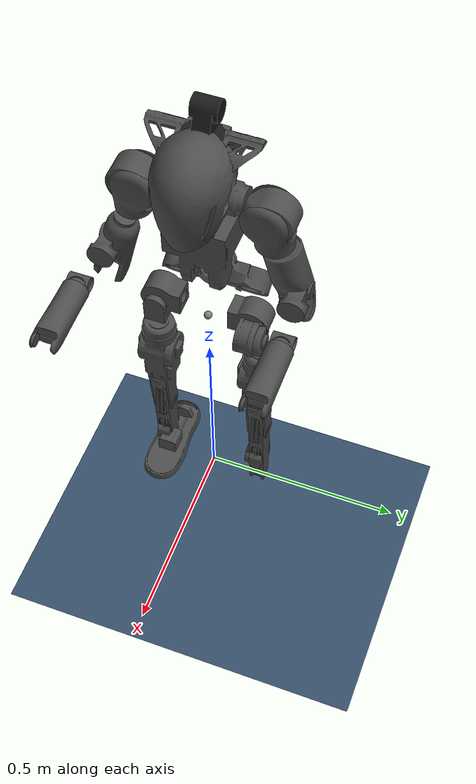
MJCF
<mujoco model="E1_2_v1">
  <compiler angle="radian" meshdir="./meshes/"/>
  <default>
    <joint damping="0.1" armature="0.01" frictionloss="0.01"/>
  </default>
  <asset>
    <mesh name="pelvis" file="pelvis.STL"/>
    <mesh name="left_hip_pitch_link" file="left_hip_pitch_link.STL"/>
    <mesh name="left_hip_roll_link" file="left_hip_roll_link.STL"/>
    <mesh name="left_hip_yaw_link" file="left_hip_yaw_link.STL"/>
    <mesh name="left_knee_link" file="left_knee_link.STL"/>
    <mesh name="left_ankle_pitch_link" file="left_ankle_pitch_link.STL"/>
    <mesh name="left_ankle_roll_link" file="left_ankle_roll_link.STL"/>
    <mesh name="right_hip_pitch_link" file="right_hip_pitch_link.STL"/>
    <mesh name="right_hip_roll_link" file="right_hip_roll_link.STL"/>
    <mesh name="right_hip_yaw_link" file="right_hip_yaw_link.STL"/>
    <mesh name="right_knee_link" file="right_knee_link.STL"/>
    <mesh name="right_ankle_pitch_link" file="right_ankle_pitch_link.STL"/>
    <mesh name="right_ankle_roll_link" file="right_ankle_roll_link.STL"/>
    <mesh name="torso_link" file="torso_link.STL"/>
    <mesh name="left_shoulder_pitch_link" file="left_shoulder_pitch_link.STL"/>
    <mesh name="left_shoulder_roll_link" file="left_shoulder_roll_link.STL"/>
    <mesh name="left_shoulder_yaw_link" file="left_shoulder_yaw_link.STL"/>
    <mesh name="left_elbow_link" file="left_elbow_link.STL"/>
    <mesh name="left_wrist_roll_link" file="left_wrist_roll_link.STL"/>
    <mesh name="left_wrist_pitch_link" file="left_wrist_pitch_link.STL"/>
    <mesh name="right_shoulder_pitch_link" file="right_shoulder_pitch_link.STL"/>
    <mesh name="right_shoulder_roll_link" file="right_shoulder_roll_link.STL"/>
    <mesh name="right_shoulder_yaw_link" file="right_shoulder_yaw_link.STL"/>
    <mesh name="right_elbow_link" file="right_elbow_link.STL"/>
    <mesh name="right_wrist_roll_link" file="right_wrist_roll_link.STL"/>
    <mesh name="right_wrist_pitch_link" file="right_wrist_pitch_link.STL"/>
    <mesh name="head_pitch_link" file="head_pitch_link.STL"/>
    <mesh name="head_yaw_link" file="head_yaw_link.STL"/>
  </asset>

  <worldbody>
    <body name="pelvis" pos="0 0 0.675">
      <inertial pos="-2.026e-05 0 0.0250193" quat="1 -1.77058e-05 -6.2652e-05 0.000906207" mass="3.6" diaginertia="0.0112704 0.00928407 0.00672158"/>
      <joint name="floating_base_joint" type="free" limited="false" actuatorfrclimited="false"/>
      <geom type="mesh" contype="0" conaffinity="0" group="1" density="0" rgba="0.29412 0.29412 0.29412 1" mesh="pelvis"/>
      <geom type="mesh" rgba="0.29412 0.29412 0.29412 1" mesh="pelvis"/>
      <site name="imu_in_pelvis" size="0.01" pos="0 0 -0.045"/>
      <body name="left_hip_pitch_link" pos="0 0.0575 0">
        <inertial pos="0.00088737 0.0559209 -0.0170011" quat="0.525183 0.830564 -0.161076 0.0916522" mass="1.01" diaginertia="0.00103812 0.00100921 0.000721394"/>
        <joint name="left_hip_pitch_joint" pos="0 0 0" axis="0 1 0" range="-2.5307 2.8798" actuatorfrcrange="-120 120"/>
        <geom type="mesh" contype="0" conaffinity="0" group="1" density="0" rgba="0.29412 0.29412 0.29412 1" mesh="left_hip_pitch_link"/>
        <body name="left_hip_roll_link" pos="0 0.0625 -0.02">
          <inertial pos="-0.00054795 0.00928439 -0.070913" quat="0.72708 0.0123078 0.0971982 0.679526" mass="0.981" diaginertia="0.00140293 0.0012261 0.000954215"/>
          <joint name="left_hip_roll_joint" pos="0 0 0" axis="1 0 0" range="-0.5236 3.1416" actuatorfrcrange="-60 60"/>
          <geom type="mesh" contype="0" conaffinity="0" group="1" density="0" rgba="0.29412 0.29412 0.29412 1" mesh="left_hip_roll_link"/>
          <body name="left_hip_yaw_link" pos="0 0.01 -0.098">
            <inertial pos="-8.81e-06 -0.00845833 -0.163113" quat="0.707299 -0.00656895 0.00682479 0.706851" mass="1.56" diaginertia="0.00493085 0.00429472 0.00135114"/>
            <joint name="left_hip_yaw_joint" pos="0 0 0" axis="0 0 1" range="-2.0944 2.0944" actuatorfrcrange="-36 36"/>
            <geom type="mesh" contype="0" conaffinity="0" group="1" density="0" rgba="0.29412 0.29412 0.29412 1" mesh="left_hip_yaw_link"/>
            <body name="left_knee_link" pos="0 0 -0.182">
              <inertial pos="-0.00054127 0.020434 -0.100513" quat="0.710429 -0.000848428 0.00238427 0.703764" mass="0.389" diaginertia="0.00417321 0.00390613 0.000296172"/>
              <joint name="left_knee_joint" pos="0 0 0" axis="0 1 0" range="0 2.2689" actuatorfrcrange="-120 120"/>
              <geom type="mesh" contype="0" conaffinity="0" group="1" density="0" rgba="0.29412 0.29412 0.29412 1" mesh="left_knee_link"/>
              <body name="left_ankle_pitch_link" pos="0 0 -0.23">
                <inertial pos="0.00011592 -0.00958151 -0.0284272" quat="0.705154 0.0494053 -0.049277 0.705612" mass="1.333" diaginertia="0.00253878 0.00227413 0.000815969"/>
                <joint name="left_ankle_pitch_joint" pos="0 0 0" axis="0 1 0" range="-0.5236 0.5236" actuatorfrcrange="-30 30"/>
                <geom type="mesh" contype="0" conaffinity="0" group="1" density="0" rgba="0.29412 0.29412 0.29412 1" mesh="left_ankle_pitch_link"/>
                <body name="left_ankle_roll_link" pos="-0.03 -0.016 -0.07">
                  <inertial pos="0.0427373 0 -0.0377132" quat="0.515461 0.484045 0.484045 0.515461" mass="0.4" diaginertia="0.00077773 0.000770618 0.000172802"/>
                  <joint name="left_ankle_roll_joint" pos="0 0 0" axis="1 0 0" range="-1.5708 1.5708" actuatorfrcrange="-30 30"/>
                  <geom type="mesh" contype="0" conaffinity="0" group="1" density="0" rgba="0.29412 0.29412 0.29412 1" mesh="left_ankle_roll_link"/>
                  <geom name="l_foot_collision" type="box" size="0.105 0.0457 0.015" pos="0.05 0 -0.055" contype="1" conaffinity="0" rgba="0.8 0.4 0.4 0.5" group="3"/>
                </body>
              </body>
            </body>
          </body>
        </body>
      </body>
      <body name="right_hip_pitch_link" pos="0 -0.0575 0">
        <inertial pos="0.00088737 -0.0559194 -0.0170037" quat="0.830604 0.524849 -0.0921638 0.16167" mass="1.005" diaginertia="0.00103816 0.00100913 0.000721421"/>
        <joint name="right_hip_pitch_joint" pos="0 0 0" axis="0 1 0" range="-2.5307 2.8798" actuatorfrcrange="-120 120"/>
        <geom type="mesh" contype="0" conaffinity="0" group="1" density="0" rgba="0.29412 0.29412 0.29412 1" mesh="right_hip_pitch_link"/>
        <body name="right_hip_roll_link" pos="0 -0.0625 -0.02">
          <inertial pos="-0.00054795 -0.00928439 -0.070913" quat="0.679526 0.0971982 0.0123078 0.72708" mass="0.981" diaginertia="0.00140293 0.0012261 0.000954215"/>
          <joint name="right_hip_roll_joint" pos="0 0 0" axis="1 0 0" range="-3.1416 0.5236" actuatorfrcrange="-60 60"/>
          <geom type="mesh" contype="0" conaffinity="0" group="1" density="0" rgba="0.29412 0.29412 0.29412 1" mesh="right_hip_roll_link"/>
          <body name="right_hip_yaw_link" pos="0 -0.01 -0.098">
            <inertial pos="8.81e-06 0.00845833 -0.163113" quat="0.707267 0.00689281 -0.00650074 0.706883" mass="1.561" diaginertia="0.00493085 0.00429472 0.00135113"/>
            <joint name="right_hip_yaw_joint" pos="0 0 0" axis="0 0 1" range="-2.0944 2.0944" actuatorfrcrange="-36 36"/>
            <geom type="mesh" contype="0" conaffinity="0" group="1" density="0" rgba="0.29412 0.29412 0.29412 1" mesh="right_hip_yaw_link"/>
            <body name="right_knee_link" pos="0 0 -0.182">
              <inertial pos="-0.00054256 -0.020434 -0.100513" quat="0.703753 0.00255437 -0.000679727 0.71044" mass="0.389" diaginertia="0.00417321 0.00390614 0.000296163"/>
              <joint name="right_knee_joint" pos="0 0 0" axis="0 1 0" range="0 2.2689" actuatorfrcrange="-120 120"/>
              <geom type="mesh" contype="0" conaffinity="0" group="1" density="0" rgba="0.29412 0.29412 0.29412 1" mesh="right_knee_link"/>
              <body name="right_ankle_pitch_link" pos="0 0 -0.23">
                <inertial pos="0.00011592 0.00956002 -0.0284576" quat="0.706733 -0.0493233 0.0493065 0.704035" mass="1.333" diaginertia="0.0025364 0.00227145 0.000815675"/>
                <joint name="right_ankle_pitch_joint" pos="0 0 0" axis="0 1 0" range="-0.5236 0.5236" actuatorfrcrange="-30 30"/>
                <geom type="mesh" contype="0" conaffinity="0" group="1" density="0" rgba="0.29412 0.29412 0.29412 1" mesh="right_ankle_pitch_link"/>
                <body name="right_ankle_roll_link" pos="-0.03 0.016 -0.07">
                  <inertial pos="0.0427373 0 -0.0377132" quat="0.515461 0.484045 0.484045 0.515461" mass="0.4" diaginertia="0.00077773 0.000770618 0.000172802"/>
                  <joint name="right_ankle_roll_joint" pos="0 0 0" axis="1 0 0" range="-1.5708 1.5708" actuatorfrcrange="-30 30"/>
                  <geom type="mesh" contype="0" conaffinity="0" group="1" density="0" rgba="0.29412 0.29412 0.29412 1" mesh="right_ankle_roll_link"/>
                  <geom name="r_foot_collision" type="box" size="0.105 0.0457 0.015" pos="0.05 0 -0.055" contype="1" conaffinity="0" rgba="0.8 0.4 0.4 0.5" group="3"/>
                </body>
              </body>
            </body>
          </body>
        </body>
      </body>
      <body name="torso_link" pos="0 0 0.12">
        <inertial pos="0.025045 0.000374189 0.141775" quat="0.710992 0.698844 -0.0672318 0.0398419" mass="13.197" diaginertia="0.438896 0.304998 0.206513"/>
        <joint name="waist_yaw_joint" pos="0 0 0" axis="0 0 1" range="-2.0944 2.0944" actuatorfrcrange="-60 60"/>
        <geom type="mesh" contype="0" conaffinity="0" group="1" density="0" rgba="0.29412 0.29412 0.29412 1" mesh="torso_link"/>
        <geom pos="0 0.109 0.23" quat="1 0 0 0" type="mesh" contype="0" conaffinity="0" group="1" density="0" rgba="0.29412 0.29412 0.29412 1" mesh="left_shoulder_pitch_link"/>
        <geom pos="0 0.145 0.23" type="mesh" contype="0" conaffinity="0" group="1" density="0" rgba="0.29412 0.29412 0.29412 1" mesh="left_shoulder_roll_link"/>
        <geom pos="0 0.17735 0.138246" quat="0.991445 0.130526 0 0" type="mesh" contype="0" conaffinity="0" group="1" density="0" rgba="0.29412 0.29412 0.29412 1" mesh="left_shoulder_yaw_link"/>
        <geom pos="0 0.2233 0.0300003" quat="1 0 0 0" type="mesh" contype="0" conaffinity="0" group="1" density="0" rgba="0.29412 0.29412 0.29412 1" mesh="left_elbow_link"/>
        <geom pos="0.1 0.235 0.0300003" quat="1 0 0 0" type="mesh" contype="0" conaffinity="0" group="1" density="0" rgba="0.29412 0.29412 0.29412 1" mesh="left_wrist_roll_link"/>
        <geom pos="0.153 0.235 0.0300003" quat="1 0 0 0" type="mesh" contype="0" conaffinity="0" group="1" density="0" rgba="0.29412 0.29412 0.29412 1" mesh="left_wrist_pitch_link"/>
        <geom pos="0 -0.109 0.23" quat="1 0 0 0" type="mesh" contype="0" conaffinity="0" group="1" density="0" rgba="0.29412 0.29412 0.29412 1" mesh="right_shoulder_pitch_link"/>
        <geom pos="0 -0.145 0.23" quat="1 0 0 0" type="mesh" contype="0" conaffinity="0" group="1" density="0" rgba="0.29412 0.29412 0.29412 1" mesh="right_shoulder_roll_link"/>
        <geom pos="0 -0.17735 0.138246" quat="0.991445 -0.130526 0 0" type="mesh" contype="0" conaffinity="0" group="1" density="0" rgba="0.29412 0.29412 0.29412 1" mesh="right_shoulder_yaw_link"/>
        <geom pos="0 -0.2233 0.0300003" quat="1 0 0 0" type="mesh" contype="0" conaffinity="0" group="1" density="0" rgba="0.29412 0.29412 0.29412 1" mesh="right_elbow_link"/>
        <geom pos="0.1 -0.235 0.0300003" quat="1 0 0 0" type="mesh" contype="0" conaffinity="0" group="1" density="0" rgba="0.29412 0.29412 0.29412 1" mesh="right_wrist_roll_link"/>
        <geom pos="0.153 -0.235 0.0300003" quat="1 0 0 0" type="mesh" contype="0" conaffinity="0" group="1" density="0" rgba="0.29412 0.29412 0.29412 1" mesh="right_wrist_pitch_link"/>
        <geom pos="0 0 0.295" type="mesh" contype="0" conaffinity="0" group="1" density="0" rgba="0.29412 0.29412 0.29412 1" mesh="head_pitch_link"/>
        <geom pos="-0.01 0 0.39" type="mesh" contype="0" conaffinity="0" group="1" density="0" rgba="0.098039 0.098039 0.098039 1" mesh="head_yaw_link"/>
      </body>
    </body>
  </worldbody>
  <visual>
    <headlight diffuse="0.6 0.6 0.6" ambient="0.1 0.1 0.1" specular="0.9 0.9 0.9"/>
    <rgba haze="0.15 0.25 0.35 1"/>
    <global azimuth="-140" elevation="-20"/>
  </visual>

  <asset>
    <texture type="skybox" builtin="gradient" rgb1="0 0 0" rgb2="0 0 0" width="800" height="800"/>
    <texture type="2d" name="plane" builtin="checker" mark="edge" rgb1="0.3 0.4 0.5" rgb2="0.1 0.2 0.3" markrgb="0.8 0.8 0.8" width="300" height="300"/>
    <material name="plane" texture="plane" texuniform="true" texrepeat="2 2" reflectance="0.0"/>
  </asset>

  <worldbody>
    <light mode="trackcom" pos="1 0 3.5" dir="0 0 -1" directional="true"/>
    <geom name="floor" size="0 0 0.05" type="plane" material="plane" friction="1.0" />
  </worldbody>
  <sensor>
    <gyro name="imu_ang_vel" site="imu_in_pelvis"/>
    <velocimeter name="imu_lin_vel" site="imu_in_pelvis"/>
    <accelerometer name="imu_lin_acc" site="imu_in_pelvis"/>
    <subtreeangmom name="root_angmom" body="pelvis"/>
  </sensor>
</mujoco>
